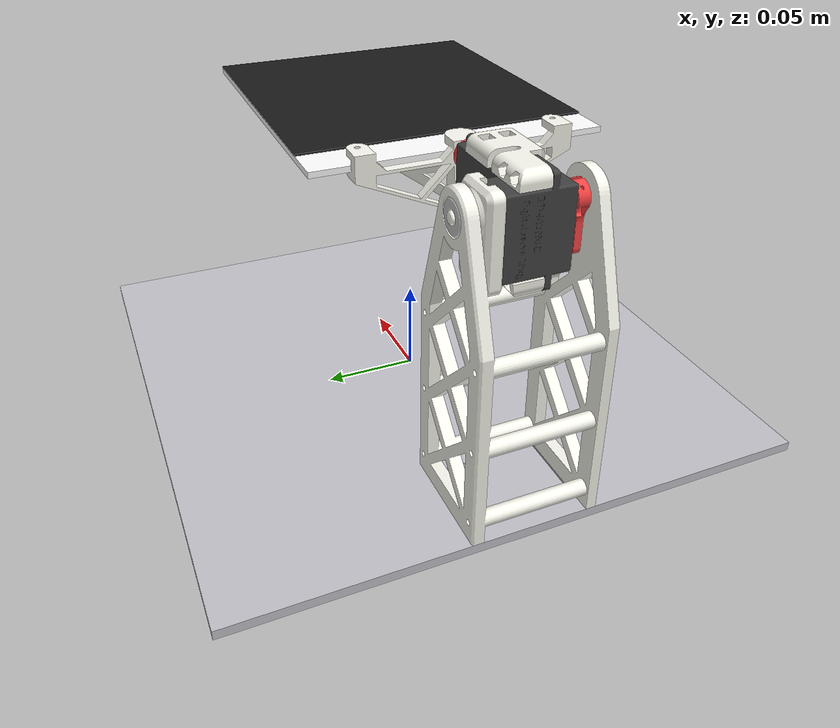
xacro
<?xml version="1.0" ?>
<robot name="assembly_v2" xmlns:xacro="http://www.ros.org/wiki/xacro">

<xacro:include filename="$(find assembly_v2_description)/urdf/materials.xacro" />
<xacro:include filename="$(find assembly_v2_description)/urdf/assembly_v2.trans" />
<xacro:include filename="$(find assembly_v2_description)/urdf/assembly_v2.gazebo" />
<link name="base_link">
  <inertial>
    <origin xyz="0.0006033383004041557 -4.06252211853132e-17 0.0024899443616599303" rpy="0 0 0"/>
    <mass value="3.51482808"/>
    <inertia ixx="0.026497" iyy="0.026243" izz="0.052725" ixy="-0.0" iyz="0.0" ixz="-4e-06"/>
  </inertial>
  <visual>
    <origin xyz="0 0 0" rpy="0 0 0"/>
    <geometry>
      <mesh filename="package://assembly_v2_description/meshes/base_link.stl" scale="0.001 0.001 0.001"/>
    </geometry>
    <material name="mdf_board"/>
  </visual>
  <collision>
    <origin xyz="0 0 0" rpy="0 0 0"/>
    <geometry>
      <mesh filename="package://assembly_v2_description/meshes/base_link.stl" scale="0.001 0.001 0.001"/>
    </geometry>
  </collision>
</link>

<link name="tower_1">
  <inertial>
    <origin xyz="4.514444373882043e-14 -0.028102155900764397 0.06964033102003142" rpy="0 0 0"/>
    <mass value="0.6072200391977587"/>
    <inertia ixx="0.001713" iyy="0.001482" izz="0.000706" ixy="-0.0" iyz="5.3e-05" ixz="0.0"/>
  </inertial>
  <visual>
    <origin xyz="0.12 -0.0268 -0.005" rpy="0 0 0"/>
    <geometry>
      <mesh filename="package://assembly_v2_description/meshes/tower_1.stl" scale="0.001 0.001 0.001"/>
    </geometry>
    <material name="nylon_66_bianco"/>
  </visual>
  <collision>
    <origin xyz="0.12 -0.0268 -0.005" rpy="0 0 0"/>
    <geometry>
      <mesh filename="package://assembly_v2_description/meshes/tower_1.stl" scale="0.001 0.001 0.001"/>
    </geometry>
  </collision>
</link>

<link name="arm_pitch_1">
  <inertial>
    <origin xyz="2.7749514237535022e-05 0.0025971752014119914 -0.007626953343667947" rpy="0 0 0"/>
    <mass value="0.008822962792787544"/>
    <inertia ixx="1e-06" iyy="1e-06" izz="0.0" ixy="0.0" iyz="-0.0" ixz="0.0"/>
  </inertial>
  <visual>
    <origin xyz="0.12 0.0268 -0.155" rpy="0 0 0"/>
    <geometry>
      <mesh filename="package://assembly_v2_description/meshes/arm_pitch_1.stl" scale="0.001 0.001 0.001"/>
    </geometry>
    <material name="opaque2476666"/>
  </visual>
  <collision>
    <origin xyz="0.12 0.0268 -0.155" rpy="0 0 0"/>
    <geometry>
      <mesh filename="package://assembly_v2_description/meshes/arm_pitch_1.stl" scale="0.001 0.001 0.001"/>
    </geometry>
  </collision>
</link>

<link name="bearing_1">
  <inertial>
    <origin xyz="7.463474283042615e-14 -0.0030000000000001067 -2.220446049250313e-16" rpy="0 0 0"/>
    <mass value="0.008917188217734908"/>
    <inertia ixx="0.0" iyy="0.0" izz="0.0" ixy="0.0" iyz="-0.0" ixz="0.0"/>
  </inertial>
  <visual>
    <origin xyz="0.12 -0.0328 -0.155" rpy="0 0 0"/>
    <geometry>
      <mesh filename="package://assembly_v2_description/meshes/bearing_1.stl" scale="0.001 0.001 0.001"/>
    </geometry>
    <material name="cromo"/>
  </visual>
  <collision>
    <origin xyz="0.12 -0.0328 -0.155" rpy="0 0 0"/>
    <geometry>
      <mesh filename="package://assembly_v2_description/meshes/bearing_1.stl" scale="0.001 0.001 0.001"/>
    </geometry>
  </collision>
</link>

<link name="bracket_pitch_1">
  <inertial>
    <origin xyz="6.529499163576702e-14 -0.005354418300046206 -0.008578876290632531" rpy="0 0 0"/>
    <mass value="0.04031781214938913"/>
    <inertia ixx="8e-06" iyy="1e-05" izz="3e-06" ixy="0.0" iyz="-0.0" ixz="-0.0"/>
  </inertial>
  <visual>
    <origin xyz="0.12 -0.0268 -0.155" rpy="0 0 0"/>
    <geometry>
      <mesh filename="package://assembly_v2_description/meshes/bracket_pitch_1.stl" scale="0.001 0.001 0.001"/>
    </geometry>
    <material name="nylon_66_bianco"/>
  </visual>
  <collision>
    <origin xyz="0.12 -0.0268 -0.155" rpy="0 0 0"/>
    <geometry>
      <mesh filename="package://assembly_v2_description/meshes/bracket_pitch_1.stl" scale="0.001 0.001 0.001"/>
    </geometry>
  </collision>
</link>

<link name="SP_1">
  <inertial>
    <origin xyz="4.2478746313801e-06 -0.02050934968537407 9.580573711495677e-05" rpy="0 0 0"/>
    <mass value="0.05033660873275774"/>
    <inertia ixx="1.4e-05" iyy="9e-06" izz="8e-06" ixy="-0.0" iyz="0.0" ixz="-0.0"/>
  </inertial>
  <visual>
    <origin xyz="0.12 -0.0213 -0.1448" rpy="0 0 0"/>
    <geometry>
      <mesh filename="package://assembly_v2_description/meshes/SP_1.stl" scale="0.001 0.001 0.001"/>
    </geometry>
    <material name="opaque636363"/>
  </visual>
  <collision>
    <origin xyz="0.12 -0.0213 -0.1448" rpy="0 0 0"/>
    <geometry>
      <mesh filename="package://assembly_v2_description/meshes/SP_1.stl" scale="0.001 0.001 0.001"/>
    </geometry>
  </collision>
</link>

<link name="servo_bracket_1">
  <inertial>
    <origin xyz="0.023519811176005392 0.0008029483681285072 -0.024919322940149147" rpy="0 0 0"/>
    <mass value="0.11882042598616296"/>
    <inertia ixx="6.6e-05" iyy="7.6e-05" izz="2.5e-05" ixy="4e-06" iyz="1e-06" ixz="-0.0"/>
  </inertial>
  <visual>
    <origin xyz="0.1249 0.0062 -0.1691" rpy="0 0 0"/>
    <geometry>
      <mesh filename="package://assembly_v2_description/meshes/servo_bracket_1.stl" scale="0.001 0.001 0.001"/>
    </geometry>
    <material name="nylon_66_bianco"/>
  </visual>
  <collision>
    <origin xyz="0.1249 0.0062 -0.1691" rpy="0 0 0"/>
    <geometry>
      <mesh filename="package://assembly_v2_description/meshes/servo_bracket_1.stl" scale="0.001 0.001 0.001"/>
    </geometry>
  </collision>
</link>

<link name="SR_1">
  <inertial>
    <origin xyz="-0.006971398812242138 0.004899992393469853 -0.024229170990020116" rpy="0 0 0"/>
    <mass value="0.05027212799160954"/>
    <inertia ixx="9e-06" iyy="1.4e-05" izz="8e-06" ixy="-0.0" iyz="0.0" ixz="-0.0"/>
  </inertial>
  <visual>
    <origin xyz="0.0825 0.00765 -0.1691" rpy="0 0 0"/>
    <geometry>
      <mesh filename="package://assembly_v2_description/meshes/SR_1.stl" scale="0.001 0.001 0.001"/>
    </geometry>
    <material name="opaque636363"/>
  </visual>
  <collision>
    <origin xyz="0.0825 0.00765 -0.1691" rpy="0 0 0"/>
    <geometry>
      <mesh filename="package://assembly_v2_description/meshes/SR_1.stl" scale="0.001 0.001 0.001"/>
    </geometry>
  </collision>
</link>

<link name="arm_roll_1">
  <inertial>
    <origin xyz="2.8778251977418234e-06 2.8070368289890603e-05 -0.007626301102671734" rpy="0 0 0"/>
    <mass value="0.00882263111091566"/>
    <inertia ixx="1e-06" iyy="1e-06" izz="0.0" ixy="-0.0" iyz="0.0" ixz="0.0"/>
  </inertial>
  <visual>
    <origin xyz="0.0645 0.00275 -0.155" rpy="0 0 0"/>
    <geometry>
      <mesh filename="package://assembly_v2_description/meshes/arm_roll_1.stl" scale="0.001 0.001 0.001"/>
    </geometry>
    <material name="opaque2476666"/>
  </visual>
  <collision>
    <origin xyz="0.0645 0.00275 -0.155" rpy="0 0 0"/>
    <geometry>
      <mesh filename="package://assembly_v2_description/meshes/arm_roll_1.stl" scale="0.001 0.001 0.001"/>
    </geometry>
  </collision>
</link>

<link name="bracket_roll_1">
  <inertial>
    <origin xyz="0.02121188618831852 1.0232715173287554e-07 -0.006535203876488066" rpy="0 0 0"/>
    <mass value="0.10024421441001274"/>
    <inertia ixx="9.9e-05" iyy="7.3e-05" izz="0.000159" ixy="0.0" iyz="-0.0" ixz="-1e-06"/>
  </inertial>
  <visual>
    <origin xyz="0.0619 0.00275 -0.155" rpy="0 0 0"/>
    <geometry>
      <mesh filename="package://assembly_v2_description/meshes/bracket_roll_1.stl" scale="0.001 0.001 0.001"/>
    </geometry>
    <material name="nylon_66_bianco"/>
  </visual>
  <collision>
    <origin xyz="0.0619 0.00275 -0.155" rpy="0 0 0"/>
    <geometry>
      <mesh filename="package://assembly_v2_description/meshes/bracket_roll_1.stl" scale="0.001 0.001 0.001"/>
    </geometry>
  </collision>
</link>

<link name="glass_plate_1">
  <inertial>
    <origin xyz="-8.743006318923108e-16 0.05000030135040751 0.0015000517457916251" rpy="0 0 0"/>
    <mass value="0.16676383619521307"/>
    <inertia ixx="0.000313" iyy="0.000402" izz="0.000714" ixy="-0.0" iyz="-0.0" ixz="-0.0"/>
  </inertial>
  <visual>
    <origin xyz="-0.0281 0.05275 -0.153" rpy="0 0 0"/>
    <geometry>
      <mesh filename="package://assembly_v2_description/meshes/glass_plate_1.stl" scale="0.001 0.001 0.001"/>
    </geometry>
    <material name="vetro_finestra"/>
  </visual>
  <collision>
    <origin xyz="-0.0281 0.05275 -0.153" rpy="0 0 0"/>
    <geometry>
      <mesh filename="package://assembly_v2_description/meshes/glass_plate_1.stl" scale="0.001 0.001 0.001"/>
    </geometry>
  </collision>
</link>

<link name="rubber_coating_1">
  <inertial>
    <origin xyz="-0.07499999999999994 3.0135371253568397e-07 0.0005000000000002225" rpy="0 0 0"/>
    <mass value="0.06075000000000086"/>
    <inertia ixx="0.000114" iyy="0.000114" izz="0.000228" ixy="-0.0" iyz="-0.0" ixz="0.0"/>
  </inertial>
  <visual>
    <origin xyz="-0.1131 0.00275 -0.156" rpy="0 0 0"/>
    <geometry>
      <mesh filename="package://assembly_v2_description/meshes/rubber_coating_1.stl" scale="0.001 0.001 0.001"/>
    </geometry>
    <material name="rivestimento_a_polvere_nero"/>
  </visual>
  <collision>
    <origin xyz="-0.1131 0.00275 -0.156" rpy="0 0 0"/>
    <geometry>
      <mesh filename="package://assembly_v2_description/meshes/rubber_coating_1.stl" scale="0.001 0.001 0.001"/>
    </geometry>
  </collision>
</link>

<joint name="Rigido 5" type="fixed">
  <origin xyz="-0.12 0.0268 0.005" rpy="0 0 0"/>
  <parent link="base_link"/>
  <child link="tower_1"/>
</joint>

<joint name="Rigido 6" type="fixed">
  <origin xyz="0.0 -0.0536 0.15" rpy="0 0 0"/>
  <parent link="tower_1"/>
  <child link="arm_pitch_1"/>
</joint>

<joint name="Rigido 7" type="fixed">
  <origin xyz="0.0 0.006 0.15" rpy="0 0 0"/>
  <parent link="tower_1"/>
  <child link="bearing_1"/>
</joint>

<joint name="Rivoluzione 8" type="continuous">
  <origin xyz="0.0 -0.006 0.0" rpy="0 0 0"/>
  <parent link="bearing_1"/>
  <child link="bracket_pitch_1"/>
  <axis xyz="0.0 -1.0 -0.0"/>
</joint>

<joint name="Rigido 9" type="fixed">
  <origin xyz="0.0 -0.0055 -0.0102" rpy="0 0 0"/>
  <parent link="bracket_pitch_1"/>
  <child link="SP_1"/>
</joint>

<joint name="Rigido 10" type="fixed">
  <origin xyz="-0.0049 -0.0275 0.0243" rpy="0 0 0"/>
  <parent link="SP_1"/>
  <child link="servo_bracket_1"/>
</joint>

<joint name="Rigido 11" type="fixed">
  <origin xyz="0.0424 -0.00145 0.0" rpy="0 0 0"/>
  <parent link="servo_bracket_1"/>
  <child link="SR_1"/>
</joint>

<joint name="Rivoluzione 12" type="continuous">
  <origin xyz="0.018 0.0049 -0.0141" rpy="0 0 0"/>
  <parent link="SR_1"/>
  <child link="arm_roll_1"/>
  <axis xyz="1.0 0.0 0.0"/>
</joint>

<joint name="Rigido 13" type="fixed">
  <origin xyz="0.0026 0.0 0.0" rpy="0 0 0"/>
  <parent link="arm_roll_1"/>
  <child link="bracket_roll_1"/>
</joint>

<joint name="Rigido 14" type="fixed">
  <origin xyz="0.09 -0.05 -0.002" rpy="0 0 0"/>
  <parent link="bracket_roll_1"/>
  <child link="glass_plate_1"/>
</joint>

<joint name="Rigido 15" type="fixed">
  <origin xyz="0.085 0.05 0.003" rpy="0 0 0"/>
  <parent link="glass_plate_1"/>
  <child link="rubber_coating_1"/>
</joint>

</robot>

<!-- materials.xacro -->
<robot name="assembly_v2" xmlns:xacro="http://www.ros.org/wiki/xacro" >

<material name="silver_default">
  <color rgba="0.700 0.700 0.700 1.000"/>
</material>
<material name="nylon_66_bianco">
  <color rgba="0.9725490196078431 0.9686274509803922 0.9294117647058824 1.0"/>
</material>
<material name="opaque2476666">
  <color rgba="0.9686274509803922 0.25882352941176473 0.25882352941176473 1.0"/>
</material>
<material name="cromo">
  <color rgba="0.7686274509803922 0.7725490196078432 0.7686274509803922 1.0"/>
</material>
<material name="opaque636363">
  <color rgba="0.25098039215686274 0.25098039215686274 0.25098039215686274 1.0"/>
</material>
<material name="vetro_finestra">
  <color rgba="1.0 1.0 1.0 1.0"/>
</material>
<material name="rivestimento_a_polvere_nero">
  <color rgba="0.09803921568627451 0.09803921568627451 0.09803921568627451 0.0"/>
</material>

</robot>

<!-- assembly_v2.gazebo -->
<robot name="assembly_v2" xmlns:xacro="http://www.ros.org/wiki/xacro" >

<xacro:property name="body_color" value="Gazebo/Silver" />

<gazebo>
  <plugin name="control" filename="libgazebo_ros_control.so"/>
</gazebo>
<gazebo reference="base_link">
  <material>${body_color}</material>
  <mu1>0.2</mu1>
  <mu2>0.2</mu2>
  <selfCollide>true</selfCollide>
  <gravity>true</gravity>
</gazebo>

<gazebo reference="tower_1">
  <material>${body_color}</material>
  <mu1>0.2</mu1>
  <mu2>0.2</mu2>
  <selfCollide>true</selfCollide>
</gazebo>

<gazebo reference="arm_pitch_1">
  <material>${body_color}</material>
  <mu1>0.2</mu1>
  <mu2>0.2</mu2>
  <selfCollide>true</selfCollide>
</gazebo>

<gazebo reference="bearing_1">
  <material>${body_color}</material>
  <mu1>0.2</mu1>
  <mu2>0.2</mu2>
  <selfCollide>true</selfCollide>
</gazebo>

<gazebo reference="bracket_pitch_1">
  <material>${body_color}</material>
  <mu1>0.2</mu1>
  <mu2>0.2</mu2>
  <selfCollide>true</selfCollide>
</gazebo>

<gazebo reference="SP_1">
  <material>${body_color}</material>
  <mu1>0.2</mu1>
  <mu2>0.2</mu2>
  <selfCollide>true</selfCollide>
</gazebo>

<gazebo reference="servo_bracket_1">
  <material>${body_color}</material>
  <mu1>0.2</mu1>
  <mu2>0.2</mu2>
  <selfCollide>true</selfCollide>
</gazebo>

<gazebo reference="SR_1">
  <material>${body_color}</material>
  <mu1>0.2</mu1>
  <mu2>0.2</mu2>
  <selfCollide>true</selfCollide>
</gazebo>

<gazebo reference="arm_roll_1">
  <material>${body_color}</material>
  <mu1>0.2</mu1>
  <mu2>0.2</mu2>
  <selfCollide>true</selfCollide>
</gazebo>

<gazebo reference="bracket_roll_1">
  <material>${body_color}</material>
  <mu1>0.2</mu1>
  <mu2>0.2</mu2>
  <selfCollide>true</selfCollide>
</gazebo>

<gazebo reference="glass_plate_1">
  <material>${body_color}</material>
  <mu1>0.2</mu1>
  <mu2>0.2</mu2>
  <selfCollide>true</selfCollide>
</gazebo>

<gazebo reference="rubber_coating_1">
  <material>${body_color}</material>
  <mu1>0.2</mu1>
  <mu2>0.2</mu2>
  <selfCollide>true</selfCollide>
</gazebo>

</robot>
